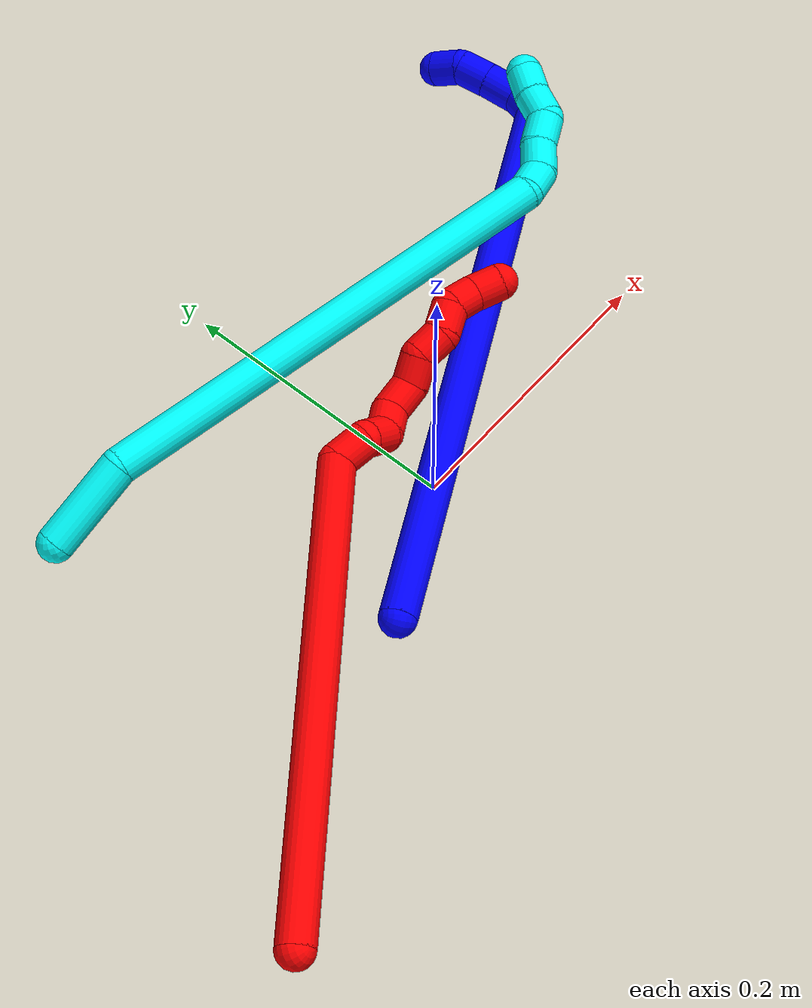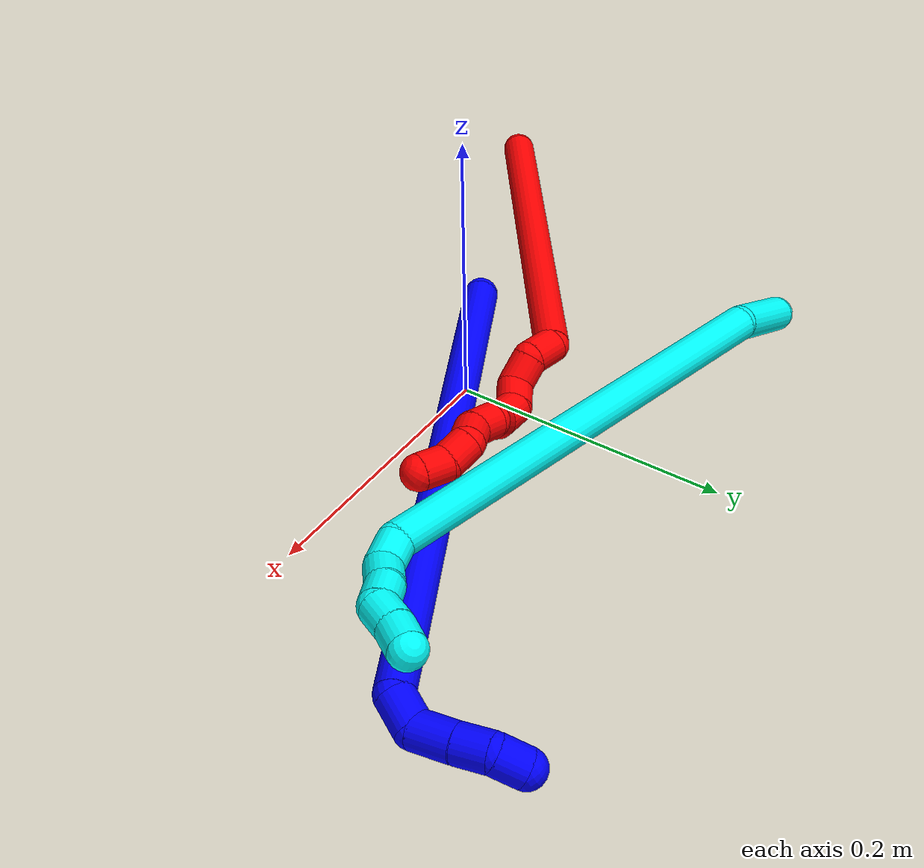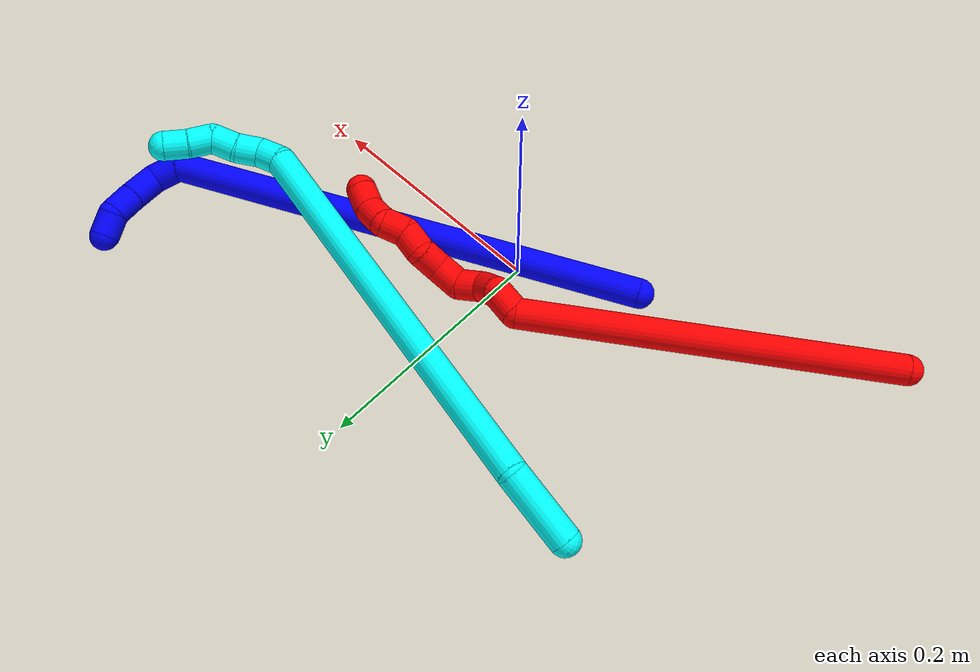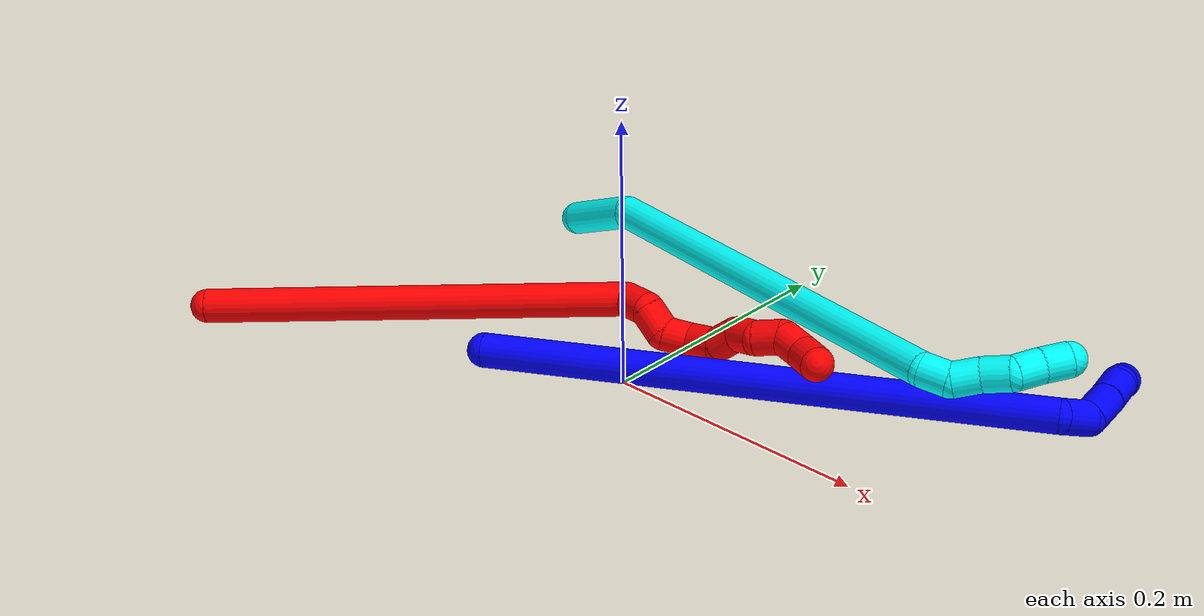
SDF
<sdf version="1.7">
 <world name="default">
  <plugin name="TubeGeneratorPlugin" filename="libtube_generator_plugin.so"/>
  <model name="photoneo_s_sensor">
   <static>1</static>
   <pose>0 0 2 1.57079 1.57079 3.14159</pose>
   <link name="link">
    <inertial><mass>0.1</mass></inertial>
    <sensor name="sensor" type="depth">
     <update_rate>30</update_rate>
     <camera>
      <horizontal_fov>1.22</horizontal_fov>
      <image><width>1920</width><height>1200</height><format>B8G8R8</format></image>
      <clip><near>0.1</near><far>4</far></clip>
      <depth_camera><output>points</output></depth_camera>
     </camera>
     <plugin name="camera_plugin" filename="libgazebo_ros_depth_camera.so">
      <baseline>0.2</baseline>
      <alwaysOn>1</alwaysOn>
      <updateRate>0.0</updateRate>
      <cameraName>camera_ir</cameraName>
      <imageTopicName>/camera/color/image_raw</imageTopicName>
      <cameraInfoTopicName>/camera/color/camera_info</cameraInfoTopicName>
      <depthImageTopicName>/camera/depth/image_raw</depthImageTopicName>
      <depthImageCameraInfoTopicName>/camera/depth/camera_info</depthImageCameraInfoTopicName>
      <pointCloudTopicName>/camera/depth/points</pointCloudTopicName>
      <frameName>fr_optical</frameName>
      <pointCloudCutoff>0.1</pointCloudCutoff>
      <pointCloudCutoffMax>2.0</pointCloudCutoffMax>
      <distortionK1>0</distortionK1>
      <distortionK2>0</distortionK2>
      <distortionK3>0</distortionK3>
      <distortionT1>0</distortionT1>
      <distortionT2>0</distortionT2>
      <CxPrime>0</CxPrime>
      <Cx>0</Cx>
      <Cy>0</Cy>
      <focalLength>0</focalLength>
      <hackBaseline>0</hackBaseline>
     </plugin>
    </sensor>
   </link>
  </model>
  <gravity>0 0 -9.8</gravity>
  <magnetic_field>6e-06 2.3e-05 -4.2e-05</magnetic_field>
  <atmosphere type="adiabatic"/>
  <physics name="default_physics" default="0" type="ode">
   <max_step_size>0.003</max_step_size>
   <real_time_factor>1</real_time_factor>
   <real_time_update_rate>1000</real_time_update_rate>
   <max_contacts>10000</max_contacts>
   <ode>
    <solver>
     <type>quick</type>
     <iters>100</iters>
     <sor>1.3</sor>
     <use_dynamic_moi_rescaling>0</use_dynamic_moi_rescaling>
    </solver>
    <constraints>
     <contact_max_correcting_vel>0</contact_max_correcting_vel>
     <contact_surface_layer>0.001</contact_surface_layer>
     <cfm>0</cfm>
     <erp>0.2</erp>
    </constraints>
   </ode>
  </physics>
  <scene><ambient>0.4 0.4 0.4 1</ambient><background>0.7 0.7 0.7 1</background><shadows>0</shadows></scene>
  <audio><device>default</device></audio>
  <spherical_coordinates>
   <surface_model>EARTH_WGS84</surface_model>
   <latitude_deg>0</latitude_deg>
   <longitude_deg>0</longitude_deg>
   <elevation>0</elevation>
   <heading_deg>0</heading_deg>
  </spherical_coordinates>
  <model name="bin">
   <static>1</static>
   <link name="bottom">
    <collision name="collision-bottom">
     <pose>0 0 -0.01 0 -0 0</pose>
     <geometry><box><size>0.8 0.6 0.02</size></box></geometry>
     <surface>
      <friction><ode><mu>100</mu><mu2>100</mu2></ode></friction>
      <contact><collide_bitmask>65535</collide_bitmask></contact>
     </surface>
    </collision>
   </link>
   <link name="west_wall">
    <collision name="collision-west_wall">
     <pose>-0.41 0 0.1 0 -0 0</pose>
     <geometry><box><size>0.02 0.6 0.2</size></box></geometry>
     <surface>
      <friction><ode><mu>100</mu><mu2>100</mu2></ode></friction>
      <contact><collide_bitmask>65535</collide_bitmask></contact>
     </surface>
    </collision>
   </link>
   <link name="east_wall">
    <collision name="collision-east_wall">
     <pose>0.41 0 0.1 0 -0 0</pose>
     <geometry><box><size>0.02 0.6 0.2</size></box></geometry>
     <surface>
      <friction><ode><mu>100</mu><mu2>100</mu2></ode></friction>
      <contact><collide_bitmask>65535</collide_bitmask></contact>
     </surface>
    </collision>
   </link>
   <link name="south_wall">
    <collision name="collision-south_wall">
     <pose>0 -0.31 0.1 0 -0 0</pose>
     <geometry><box><size>0.8 0.02 0.2</size></box></geometry>
     <surface>
      <friction><ode><mu>100</mu><mu2>100</mu2></ode></friction>
      <contact><collide_bitmask>65535</collide_bitmask></contact>
     </surface>
    </collision>
   </link>
   <link name="north_wall">
    <collision name="collision-north_wall">
     <pose>0 0.31 0.1 0 -0 0</pose>
     <geometry><box><size>0.8 0.02 0.2</size></box></geometry>
     <surface>
      <friction><ode><mu>100</mu><mu2>100</mu2></ode></friction>
      <contact><collide_bitmask>65535</collide_bitmask></contact>
     </surface>
    </collision>
   </link>
  </model>
  <model name="1">
   <static>0</static>
   <link name="1">
    <collision name="collision-cylinder-e_1_1_4">
     <pose>0.195479 0.028595 0.049634 -0.522681 1.28574 -0.395427</pose>
     <geometry><cylinder><radius>0.0125</radius><length>0.407397</length></cylinder></geometry>
     <surface>
      <friction><ode><mu>1.16</mu><mu2>1.16</mu2><slip1>0</slip1><slip2>0</slip2></ode></friction>
      <contact><ode><kp>1e+06</kp><kd>1</kd><max_vel>0</max_vel><min_depth>0.001</min_depth></ode></contact>
     </surface>
    </collision>
    <visual name="visual-cylinder-e_1_1_4">
     <pose>0.195479 0.028595 0.049634 -0.522681 1.28574 -0.395427</pose>
     <geometry><cylinder><radius>0.0125</radius><length>0.407397</length></cylinder></geometry>
     <material><ambient>0 0 1 1</ambient></material>
    </visual>
    <collision name="collision-cylinder-e_2_4_5">
     <pose>0.401388 0.052226 0.097257 1.9555 1.09639 1.47224</pose>
     <geometry><cylinder><radius>0.0125</radius><length>0.023449</length></cylinder></geometry>
     <surface>
      <friction><ode><mu>1.16</mu><mu2>1.16</mu2><slip1>0</slip1><slip2>0</slip2></ode></friction>
      <contact><ode><kp>1e+06</kp><kd>1</kd><max_vel>0</max_vel><min_depth>0.001</min_depth></ode></contact>
     </surface>
    </collision>
    <visual name="visual-cylinder-e_2_4_5">
     <pose>0.401388 0.052226 0.097257 1.9555 1.09639 1.47224</pose>
     <geometry><cylinder><radius>0.0125</radius><length>0.023449</length></cylinder></geometry>
     <material><ambient>0 0 1 1</ambient></material>
    </visual>
    <collision name="collision-cylinder-e_3_5_6">
     <pose>0.41977 0.043266 0.08521 2.76277 0.634597 2.08478</pose>
     <geometry><cylinder><radius>0.0125</radius><length>0.026829</length></cylinder></geometry>
     <surface>
      <friction><ode><mu>1.16</mu><mu2>1.16</mu2><slip1>0</slip1><slip2>0</slip2></ode></friction>
      <contact><ode><kp>1e+06</kp><kd>1</kd><max_vel>0</max_vel><min_depth>0.001</min_depth></ode></contact>
     </surface>
    </collision>
    <visual name="visual-cylinder-e_3_5_6">
     <pose>0.41977 0.043266 0.08521 2.76277 0.634597 2.08478</pose>
     <geometry><cylinder><radius>0.0125</radius><length>0.026829</length></cylinder></geometry>
     <material><ambient>0 0 1 1</ambient></material>
    </visual>
    <collision name="collision-cylinder-e_4_6_7">
     <pose>0.433691 0.035768 0.066513 2.7572 0.568518 1.96644</pose>
     <geometry><cylinder><radius>0.0125</radius><length>0.022171</length></cylinder></geometry>
     <surface>
      <friction><ode><mu>1.16</mu><mu2>1.16</mu2><slip1>0</slip1><slip2>0</slip2></ode></friction>
      <contact><ode><kp>1e+06</kp><kd>1</kd><max_vel>0</max_vel><min_depth>0.001</min_depth></ode></contact>
     </surface>
    </collision>
    <visual name="visual-cylinder-e_4_6_7">
     <pose>0.433691 0.035768 0.066513 2.7572 0.568518 1.96644</pose>
     <geometry><cylinder><radius>0.0125</radius><length>0.022171</length></cylinder></geometry>
     <material><ambient>0 0 1 1</ambient></material>
    </visual>
    <collision name="collision-cylinder-e_5_7_2">
     <pose>0.442916 0.024587 0.052197 2.2057 0.329091 0.634891</pose>
     <geometry><cylinder><radius>0.0125</radius><length>0.020153</length></cylinder></geometry>
     <surface>
      <friction><ode><mu>1.16</mu><mu2>1.16</mu2><slip1>0</slip1><slip2>0</slip2></ode></friction>
      <contact><ode><kp>1e+06</kp><kd>1</kd><max_vel>0</max_vel><min_depth>0.001</min_depth></ode></contact>
     </surface>
    </collision>
    <visual name="visual-cylinder-e_5_7_2">
     <pose>0.442916 0.024587 0.052197 2.2057 0.329091 0.634891</pose>
     <geometry><cylinder><radius>0.0125</radius><length>0.020153</length></cylinder></geometry>
     <material><ambient>0 0 1 1</ambient></material>
    </visual>
    <collision name="collision-sphere-2">
     <pose>0.446173 0.01691 0.046542 0 -0 0</pose>
     <geometry><sphere><radius>0.0125</radius></sphere></geometry>
     <surface>
      <friction><ode><mu>1.16</mu><mu2>1.16</mu2><slip1>0</slip1><slip2>0</slip2></ode></friction>
      <contact><ode><kp>1e+06</kp><kd>1</kd><max_vel>0</max_vel><min_depth>0.001</min_depth></ode></contact>
     </surface>
    </collision>
    <visual name="visual-sphere-2">
     <pose>0.446173 0.01691 0.046542 0 -0 0</pose>
     <geometry><sphere><radius>0.0125</radius></sphere></geometry>
     <material><ambient>0 0 1 1</ambient></material>
    </visual>
    <collision name="collision-sphere-7">
     <pose>0.43966 0.032265 0.057853 0 -0 0</pose>
     <geometry><sphere><radius>0.0125</radius></sphere></geometry>
     <surface>
      <friction><ode><mu>1.16</mu><mu2>1.16</mu2><slip1>0</slip1><slip2>0</slip2></ode></friction>
      <contact><ode><kp>1e+06</kp><kd>1</kd><max_vel>0</max_vel><min_depth>0.001</min_depth></ode></contact>
     </surface>
    </collision>
    <visual name="visual-sphere-7">
     <pose>0.43966 0.032265 0.057853 0 -0 0</pose>
     <geometry><sphere><radius>0.0125</radius></sphere></geometry>
     <material><ambient>0 0 1 1</ambient></material>
    </visual>
    <collision name="collision-sphere-6">
     <pose>0.427723 0.039271 0.075173 0 -0 0</pose>
     <geometry><sphere><radius>0.0125</radius></sphere></geometry>
     <surface>
      <friction><ode><mu>1.16</mu><mu2>1.16</mu2><slip1>0</slip1><slip2>0</slip2></ode></friction>
      <contact><ode><kp>1e+06</kp><kd>1</kd><max_vel>0</max_vel><min_depth>0.001</min_depth></ode></contact>
     </surface>
    </collision>
    <visual name="visual-sphere-6">
     <pose>0.427723 0.039271 0.075173 0 -0 0</pose>
     <geometry><sphere><radius>0.0125</radius></sphere></geometry>
     <material><ambient>0 0 1 1</ambient></material>
    </visual>
    <collision name="collision-sphere-5">
     <pose>0.411817 0.047262 0.095247 0 -0 0</pose>
     <geometry><sphere><radius>0.0125</radius></sphere></geometry>
     <surface>
      <friction><ode><mu>1.16</mu><mu2>1.16</mu2><slip1>0</slip1><slip2>0</slip2></ode></friction>
      <contact><ode><kp>1e+06</kp><kd>1</kd><max_vel>0</max_vel><min_depth>0.001</min_depth></ode></contact>
     </surface>
    </collision>
    <visual name="visual-sphere-5">
     <pose>0.411817 0.047262 0.095247 0 -0 0</pose>
     <geometry><sphere><radius>0.0125</radius></sphere></geometry>
     <material><ambient>0 0 1 1</ambient></material>
    </visual>
    <collision name="collision-sphere-1">
     <geometry><sphere><radius>0.0125</radius></sphere></geometry>
     <surface>
      <friction><ode><mu>1.16</mu><mu2>1.16</mu2><slip1>0</slip1><slip2>0</slip2></ode></friction>
      <contact><ode><kp>1e+06</kp><kd>1</kd><max_vel>0</max_vel><min_depth>0.001</min_depth></ode></contact>
     </surface>
    </collision>
    <visual name="visual-sphere-1">
     <geometry><sphere><radius>0.0125</radius></sphere></geometry>
     <material><ambient>0 0 1 1</ambient></material>
    </visual>
    <collision name="collision-sphere-4">
     <pose>0.390958 0.057191 0.099267 0 -0 0</pose>
     <geometry><sphere><radius>0.0125</radius></sphere></geometry>
     <surface>
      <friction><ode><mu>1.16</mu><mu2>1.16</mu2><slip1>0</slip1><slip2>0</slip2></ode></friction>
      <contact><ode><kp>1e+06</kp><kd>1</kd><max_vel>0</max_vel><min_depth>0.001</min_depth></ode></contact>
     </surface>
    </collision>
    <visual name="visual-sphere-4">
     <pose>0.390958 0.057191 0.099267 0 -0 0</pose>
     <geometry><sphere><radius>0.0125</radius></sphere></geometry>
     <material><ambient>0 0 1 1</ambient></material>
    </visual>
    <inertial>
     <pose>0.237707 0.030647 0.054628 0 -0 0</pose>
     <mass>0.5</mass>
     <inertia>
      <ixx>0.000894</ixx>
      <ixy>0</ixy>
      <ixz>0</ixz>
      <iyy>0.004959</iyy>
      <iyz>0</iyz>
      <izz>-0.006214</izz>
     </inertia>
    </inertial>
   </link>
   <pose>-0.091062 -0.047443 0.011525 2.04522 -0.013874 0.750331</pose>
  </model>
  <model name="2">
   <static>0</static>
   <link name="2">
    <collision name="collision-cylinder-e_1_1_4">
     <pose>0.140837 0.063815 0.017816 -1.29854 1.13107 -0.897903</pose>
     <geometry><cylinder><radius>0.0125</radius><length>0.311286</length></cylinder></geometry>
     <surface>
      <friction><ode><mu>1.16</mu><mu2>1.16</mu2><slip1>0</slip1><slip2>0</slip2></ode></friction>
      <contact><ode><kp>1e+06</kp><kd>1</kd><max_vel>0</max_vel><min_depth>0.001</min_depth></ode></contact>
     </surface>
    </collision>
    <visual name="visual-cylinder-e_1_1_4">
     <pose>0.140837 0.063815 0.017816 -1.29854 1.13107 -0.897903</pose>
     <geometry><cylinder><radius>0.0125</radius><length>0.311286</length></cylinder></geometry>
     <material><ambient>1 0 0 1</ambient></material>
    </visual>
    <collision name="collision-cylinder-e_2_4_5">
     <pose>0.290453 0.1264 0.043355 0.158006 0.843172 0.07098</pose>
     <geometry><cylinder><radius>0.0125</radius><length>0.023515</length></cylinder></geometry>
     <surface>
      <friction><ode><mu>1.16</mu><mu2>1.16</mu2><slip1>0</slip1><slip2>0</slip2></ode></friction>
      <contact><ode><kp>1e+06</kp><kd>1</kd><max_vel>0</max_vel><min_depth>0.001</min_depth></ode></contact>
     </surface>
    </collision>
    <visual name="visual-cylinder-e_2_4_5">
     <pose>0.290453 0.1264 0.043355 0.158006 0.843172 0.07098</pose>
     <geometry><cylinder><radius>0.0125</radius><length>0.023515</length></cylinder></geometry>
     <material><ambient>1 0 0 1</ambient></material>
    </visual>
    <collision name="collision-cylinder-e_3_5_6">
     <pose>0.308225 0.119461 0.052145 1.386 0.997353 0.849396</pose>
     <geometry><cylinder><radius>0.0125</radius><length>0.021408</length></cylinder></geometry>
     <surface>
      <friction><ode><mu>1.16</mu><mu2>1.16</mu2><slip1>0</slip1><slip2>0</slip2></ode></friction>
      <contact><ode><kp>1e+06</kp><kd>1</kd><max_vel>0</max_vel><min_depth>0.001</min_depth></ode></contact>
     </surface>
    </collision>
    <visual name="visual-cylinder-e_3_5_6">
     <pose>0.308225 0.119461 0.052145 1.386 0.997353 0.849396</pose>
     <geometry><cylinder><radius>0.0125</radius><length>0.021408</length></cylinder></geometry>
     <material><ambient>1 0 0 1</ambient></material>
    </visual>
    <collision name="collision-cylinder-e_4_6_7">
     <pose>0.327276 0.115465 0.053703 -1.29152 1.39554 -1.12699</pose>
     <geometry><cylinder><radius>0.0125</radius><length>0.020431</length></cylinder></geometry>
     <surface>
      <friction><ode><mu>1.16</mu><mu2>1.16</mu2><slip1>0</slip1><slip2>0</slip2></ode></friction>
      <contact><ode><kp>1e+06</kp><kd>1</kd><max_vel>0</max_vel><min_depth>0.001</min_depth></ode></contact>
     </surface>
    </collision>
    <visual name="visual-cylinder-e_4_6_7">
     <pose>0.327276 0.115465 0.053703 -1.29152 1.39554 -1.12699</pose>
     <geometry><cylinder><radius>0.0125</radius><length>0.020431</length></cylinder></geometry>
     <material><ambient>1 0 0 1</ambient></material>
    </visual>
    <collision name="collision-cylinder-e_5_7_8">
     <pose>0.34634 0.118332 0.060849 -0.171784 0.927278 -0.086049</pose>
     <geometry><cylinder><radius>0.0125</radius><length>0.022512</length></cylinder></geometry>
     <surface>
      <friction><ode><mu>1.16</mu><mu2>1.16</mu2><slip1>0</slip1><slip2>0</slip2></ode></friction>
      <contact><ode><kp>1e+06</kp><kd>1</kd><max_vel>0</max_vel><min_depth>0.001</min_depth></ode></contact>
     </surface>
    </collision>
    <visual name="visual-cylinder-e_5_7_8">
     <pose>0.34634 0.118332 0.060849 -0.171784 0.927278 -0.086049</pose>
     <geometry><cylinder><radius>0.0125</radius><length>0.022512</length></cylinder></geometry>
     <material><ambient>1 0 0 1</ambient></material>
    </visual>
    <collision name="collision-cylinder-e_6_8_9">
     <pose>0.360578 0.125389 0.073892 -0.745855 0.541642 -0.216398</pose>
     <geometry><cylinder><radius>0.0125</radius><length>0.020302</length></cylinder></geometry>
     <surface>
      <friction><ode><mu>1.16</mu><mu2>1.16</mu2><slip1>0</slip1><slip2>0</slip2></ode></friction>
      <contact><ode><kp>1e+06</kp><kd>1</kd><max_vel>0</max_vel><min_depth>0.001</min_depth></ode></contact>
     </surface>
    </collision>
    <visual name="visual-cylinder-e_6_8_9">
     <pose>0.360578 0.125389 0.073892 -0.745855 0.541642 -0.216398</pose>
     <geometry><cylinder><radius>0.0125</radius><length>0.020302</length></cylinder></geometry>
     <material><ambient>1 0 0 1</ambient></material>
    </visual>
    <collision name="collision-cylinder-e_7_9_10">
     <pose>0.372548 0.131596 0.08769 -0.041081 0.737539 -0.015878</pose>
     <geometry><cylinder><radius>0.0125</radius><length>0.020039</length></cylinder></geometry>
     <surface>
      <friction><ode><mu>1.16</mu><mu2>1.16</mu2><slip1>0</slip1><slip2>0</slip2></ode></friction>
      <contact><ode><kp>1e+06</kp><kd>1</kd><max_vel>0</max_vel><min_depth>0.001</min_depth></ode></contact>
     </surface>
    </collision>
    <visual name="visual-cylinder-e_7_9_10">
     <pose>0.372548 0.131596 0.08769 -0.041081 0.737539 -0.015878</pose>
     <geometry><cylinder><radius>0.0125</radius><length>0.020039</length></cylinder></geometry>
     <material><ambient>1 0 0 1</ambient></material>
    </visual>
    <collision name="collision-cylinder-e_8_10_11">
     <pose>0.387862 0.135697 0.098888 -0.786523 1.01184 -0.451841</pose>
     <geometry><cylinder><radius>0.0125</radius><length>0.02023</length></cylinder></geometry>
     <surface>
      <friction><ode><mu>1.16</mu><mu2>1.16</mu2><slip1>0</slip1><slip2>0</slip2></ode></friction>
      <contact><ode><kp>1e+06</kp><kd>1</kd><max_vel>0</max_vel><min_depth>0.001</min_depth></ode></contact>
     </surface>
    </collision>
    <visual name="visual-cylinder-e_8_10_11">
     <pose>0.387862 0.135697 0.098888 -0.786523 1.01184 -0.451841</pose>
     <geometry><cylinder><radius>0.0125</radius><length>0.02023</length></cylinder></geometry>
     <material><ambient>1 0 0 1</ambient></material>
    </visual>
    <collision name="collision-cylinder-e_9_11_12">
     <pose>0.404645 0.136643 0.107661 0.519537 0.960295 0.275082</pose>
     <geometry><cylinder><radius>0.0125</radius><length>0.020034</length></cylinder></geometry>
     <surface>
      <friction><ode><mu>1.16</mu><mu2>1.16</mu2><slip1>0</slip1><slip2>0</slip2></ode></friction>
      <contact><ode><kp>1e+06</kp><kd>1</kd><max_vel>0</max_vel><min_depth>0.001</min_depth></ode></contact>
     </surface>
    </collision>
    <visual name="visual-cylinder-e_9_11_12">
     <pose>0.404645 0.136643 0.107661 0.519537 0.960295 0.275082</pose>
     <geometry><cylinder><radius>0.0125</radius><length>0.020034</length></cylinder></geometry>
     <material><ambient>1 0 0 1</ambient></material>
    </visual>
    <collision name="collision-cylinder-e_10_12_2">
     <pose>0.418655 0.130969 0.120444 0.347413 0.61051 0.110473</pose>
     <geometry><cylinder><radius>0.0125</radius><length>0.020243</length></cylinder></geometry>
     <surface>
      <friction><ode><mu>1.16</mu><mu2>1.16</mu2><slip1>0</slip1><slip2>0</slip2></ode></friction>
      <contact><ode><kp>1e+06</kp><kd>1</kd><max_vel>0</max_vel><min_depth>0.001</min_depth></ode></contact>
     </surface>
    </collision>
    <visual name="visual-cylinder-e_10_12_2">
     <pose>0.418655 0.130969 0.120444 0.347413 0.61051 0.110473</pose>
     <geometry><cylinder><radius>0.0125</radius><length>0.020243</length></cylinder></geometry>
     <material><ambient>1 0 0 1</ambient></material>
    </visual>
    <collision name="collision-sphere-2">
     <pose>0.424457 0.128145 0.128241 0 -0 0</pose>
     <geometry><sphere><radius>0.0125</radius></sphere></geometry>
     <surface>
      <friction><ode><mu>1.16</mu><mu2>1.16</mu2><slip1>0</slip1><slip2>0</slip2></ode></friction>
      <contact><ode><kp>1e+06</kp><kd>1</kd><max_vel>0</max_vel><min_depth>0.001</min_depth></ode></contact>
     </surface>
    </collision>
    <visual name="visual-sphere-2">
     <pose>0.424457 0.128145 0.128241 0 -0 0</pose>
     <geometry><sphere><radius>0.0125</radius></sphere></geometry>
     <material><ambient>1 0 0 1</ambient></material>
    </visual>
    <collision name="collision-sphere-12">
     <pose>0.412852 0.133792 0.112646 0 -0 0</pose>
     <geometry><sphere><radius>0.0125</radius></sphere></geometry>
     <surface>
      <friction><ode><mu>1.16</mu><mu2>1.16</mu2><slip1>0</slip1><slip2>0</slip2></ode></friction>
      <contact><ode><kp>1e+06</kp><kd>1</kd><max_vel>0</max_vel><min_depth>0.001</min_depth></ode></contact>
     </surface>
    </collision>
    <visual name="visual-sphere-12">
     <pose>0.412852 0.133792 0.112646 0 -0 0</pose>
     <geometry><sphere><radius>0.0125</radius></sphere></geometry>
     <material><ambient>1 0 0 1</ambient></material>
    </visual>
    <collision name="collision-sphere-11">
     <pose>0.396437 0.139495 0.102676 0 -0 0</pose>
     <geometry><sphere><radius>0.0125</radius></sphere></geometry>
     <surface>
      <friction><ode><mu>1.16</mu><mu2>1.16</mu2><slip1>0</slip1><slip2>0</slip2></ode></friction>
      <contact><ode><kp>1e+06</kp><kd>1</kd><max_vel>0</max_vel><min_depth>0.001</min_depth></ode></contact>
     </surface>
    </collision>
    <visual name="visual-sphere-11">
     <pose>0.396437 0.139495 0.102676 0 -0 0</pose>
     <geometry><sphere><radius>0.0125</radius></sphere></geometry>
     <material><ambient>1 0 0 1</ambient></material>
    </visual>
    <collision name="collision-sphere-10">
     <pose>0.379286 0.1319 0.095099 0 -0 0</pose>
     <geometry><sphere><radius>0.0125</radius></sphere></geometry>
     <surface>
      <friction><ode><mu>1.16</mu><mu2>1.16</mu2><slip1>0</slip1><slip2>0</slip2></ode></friction>
      <contact><ode><kp>1e+06</kp><kd>1</kd><max_vel>0</max_vel><min_depth>0.001</min_depth></ode></contact>
     </surface>
    </collision>
    <visual name="visual-sphere-10">
     <pose>0.379286 0.1319 0.095099 0 -0 0</pose>
     <geometry><sphere><radius>0.0125</radius></sphere></geometry>
     <material><ambient>1 0 0 1</ambient></material>
    </visual>
    <collision name="collision-sphere-9">
     <pose>0.365811 0.131291 0.08028 0 -0 0</pose>
     <geometry><sphere><radius>0.0125</radius></sphere></geometry>
     <surface>
      <friction><ode><mu>1.16</mu><mu2>1.16</mu2><slip1>0</slip1><slip2>0</slip2></ode></friction>
      <contact><ode><kp>1e+06</kp><kd>1</kd><max_vel>0</max_vel><min_depth>0.001</min_depth></ode></contact>
     </surface>
    </collision>
    <visual name="visual-sphere-9">
     <pose>0.365811 0.131291 0.08028 0 -0 0</pose>
     <geometry><sphere><radius>0.0125</radius></sphere></geometry>
     <material><ambient>1 0 0 1</ambient></material>
    </visual>
    <collision name="collision-sphere-4">
     <pose>0.281673 0.127631 0.035633 0 -0 0</pose>
     <geometry><sphere><radius>0.0125</radius></sphere></geometry>
     <surface>
      <friction><ode><mu>1.16</mu><mu2>1.16</mu2><slip1>0</slip1><slip2>0</slip2></ode></friction>
      <contact><ode><kp>1e+06</kp><kd>1</kd><max_vel>0</max_vel><min_depth>0.001</min_depth></ode></contact>
     </surface>
    </collision>
    <visual name="visual-sphere-4">
     <pose>0.281673 0.127631 0.035633 0 -0 0</pose>
     <geometry><sphere><radius>0.0125</radius></sphere></geometry>
     <material><ambient>1 0 0 1</ambient></material>
    </visual>
    <collision name="collision-sphere-1">
     <geometry><sphere><radius>0.0125</radius></sphere></geometry>
     <surface>
      <friction><ode><mu>1.16</mu><mu2>1.16</mu2><slip1>0</slip1><slip2>0</slip2></ode></friction>
      <contact><ode><kp>1e+06</kp><kd>1</kd><max_vel>0</max_vel><min_depth>0.001</min_depth></ode></contact>
     </surface>
    </collision>
    <visual name="visual-sphere-1">
     <geometry><sphere><radius>0.0125</radius></sphere></geometry>
     <material><ambient>1 0 0 1</ambient></material>
    </visual>
    <collision name="collision-sphere-8">
     <pose>0.355344 0.119486 0.067503 0 -0 0</pose>
     <geometry><sphere><radius>0.0125</radius></sphere></geometry>
     <surface>
      <friction><ode><mu>1.16</mu><mu2>1.16</mu2><slip1>0</slip1><slip2>0</slip2></ode></friction>
      <contact><ode><kp>1e+06</kp><kd>1</kd><max_vel>0</max_vel><min_depth>0.001</min_depth></ode></contact>
     </surface>
    </collision>
    <visual name="visual-sphere-8">
     <pose>0.355344 0.119486 0.067503 0 -0 0</pose>
     <geometry><sphere><radius>0.0125</radius></sphere></geometry>
     <material><ambient>1 0 0 1</ambient></material>
    </visual>
    <collision name="collision-sphere-5">
     <pose>0.299233 0.12517 0.051078 0 -0 0</pose>
     <geometry><sphere><radius>0.0125</radius></sphere></geometry>
     <surface>
      <friction><ode><mu>1.16</mu><mu2>1.16</mu2><slip1>0</slip1><slip2>0</slip2></ode></friction>
      <contact><ode><kp>1e+06</kp><kd>1</kd><max_vel>0</max_vel><min_depth>0.001</min_depth></ode></contact>
     </surface>
    </collision>
    <visual name="visual-sphere-5">
     <pose>0.299233 0.12517 0.051078 0 -0 0</pose>
     <geometry><sphere><radius>0.0125</radius></sphere></geometry>
     <material><ambient>1 0 0 1</ambient></material>
    </visual>
    <collision name="collision-sphere-6">
     <pose>0.317217 0.113753 0.053212 0 -0 0</pose>
     <geometry><sphere><radius>0.0125</radius></sphere></geometry>
     <surface>
      <friction><ode><mu>1.16</mu><mu2>1.16</mu2><slip1>0</slip1><slip2>0</slip2></ode></friction>
      <contact><ode><kp>1e+06</kp><kd>1</kd><max_vel>0</max_vel><min_depth>0.001</min_depth></ode></contact>
     </surface>
    </collision>
    <visual name="visual-sphere-6">
     <pose>0.317217 0.113753 0.053212 0 -0 0</pose>
     <geometry><sphere><radius>0.0125</radius></sphere></geometry>
     <material><ambient>1 0 0 1</ambient></material>
    </visual>
    <collision name="collision-sphere-7">
     <pose>0.337335 0.117177 0.054194 0 -0 0</pose>
     <geometry><sphere><radius>0.0125</radius></sphere></geometry>
     <surface>
      <friction><ode><mu>1.16</mu><mu2>1.16</mu2><slip1>0</slip1><slip2>0</slip2></ode></friction>
      <contact><ode><kp>1e+06</kp><kd>1</kd><max_vel>0</max_vel><min_depth>0.001</min_depth></ode></contact>
     </surface>
    </collision>
    <visual name="visual-sphere-7">
     <pose>0.337335 0.117177 0.054194 0 -0 0</pose>
     <geometry><sphere><radius>0.0125</radius></sphere></geometry>
     <material><ambient>1 0 0 1</ambient></material>
    </visual>
    <inertial>
     <pose>0.221932 0.087468 0.040003 0 -0 0</pose>
     <mass>0.5</mass>
     <inertia>
      <ixx>-0.000129</ixx>
      <ixy>0</ixy>
      <ixz>0</ixz>
      <iyy>0.001327</iyy>
      <iyz>0</iyz>
      <izz>-0.003322</izz>
     </inertia>
    </inertial>
   </link>
   <pose>-0.2888 -0.139511 0.012458 0.884448 0.335821 0.468432</pose>
  </model>
  <model name="3">
   <static>0</static>
   <link name="3">
    <collision name="collision-cylinder-e_1_1_4">
     <pose>0.026777 -0.009584 0.013026 0.634346 1.02748 0.366304</pose>
     <geometry><cylinder><radius>0.0125</radius><length>0.062563</length></cylinder></geometry>
     <surface>
      <friction><ode><mu>1.16</mu><mu2>1.16</mu2><slip1>0</slip1><slip2>0</slip2></ode></friction>
      <contact><ode><kp>1e+06</kp><kd>1</kd><max_vel>0</max_vel><min_depth>0.001</min_depth></ode></contact>
     </surface>
    </collision>
    <visual name="visual-cylinder-e_1_1_4">
     <pose>0.026777 -0.009584 0.013026 0.634346 1.02748 0.366304</pose>
     <geometry><cylinder><radius>0.0125</radius><length>0.062563</length></cylinder></geometry>
     <material><ambient>0.003922 1 0.996078 1</ambient></material>
    </visual>
    <collision name="collision-cylinder-e_2_4_5">
     <pose>0.215022 -0.060819 0.033693 1.38934 1.31431 1.14271</pose>
     <geometry><cylinder><radius>0.0125</radius><length>0.333857</length></cylinder></geometry>
     <surface>
      <friction><ode><mu>1.16</mu><mu2>1.16</mu2><slip1>0</slip1><slip2>0</slip2></ode></friction>
      <contact><ode><kp>1e+06</kp><kd>1</kd><max_vel>0</max_vel><min_depth>0.001</min_depth></ode></contact>
     </surface>
    </collision>
    <visual name="visual-cylinder-e_2_4_5">
     <pose>0.215022 -0.060819 0.033693 1.38934 1.31431 1.14271</pose>
     <geometry><cylinder><radius>0.0125</radius><length>0.333857</length></cylinder></geometry>
     <material><ambient>0.003922 1 0.996078 1</ambient></material>
    </visual>
    <collision name="collision-cylinder-e_3_5_6">
     <pose>0.386704 -0.100371 0.042639 -1.01499 1.33337 -0.824915</pose>
     <geometry><cylinder><radius>0.0125</radius><length>0.021017</length></cylinder></geometry>
     <surface>
      <friction><ode><mu>1.16</mu><mu2>1.16</mu2><slip1>0</slip1><slip2>0</slip2></ode></friction>
      <contact><ode><kp>1e+06</kp><kd>1</kd><max_vel>0</max_vel><min_depth>0.001</min_depth></ode></contact>
     </surface>
    </collision>
    <visual name="visual-cylinder-e_3_5_6">
     <pose>0.386704 -0.100371 0.042639 -1.01499 1.33337 -0.824915</pose>
     <geometry><cylinder><radius>0.0125</radius><length>0.021017</length></cylinder></geometry>
     <material><ambient>0.003922 1 0.996078 1</ambient></material>
    </visual>
    <collision name="collision-cylinder-e_4_6_7">
     <pose>0.404272 -0.094306 0.050007 -0.579027 0.792886 -0.248111</pose>
     <geometry><cylinder><radius>0.0125</radius><length>0.020647</length></cylinder></geometry>
     <surface>
      <friction><ode><mu>1.16</mu><mu2>1.16</mu2><slip1>0</slip1><slip2>0</slip2></ode></friction>
      <contact><ode><kp>1e+06</kp><kd>1</kd><max_vel>0</max_vel><min_depth>0.001</min_depth></ode></contact>
     </surface>
    </collision>
    <visual name="visual-cylinder-e_4_6_7">
     <pose>0.404272 -0.094306 0.050007 -0.579027 0.792886 -0.248111</pose>
     <geometry><cylinder><radius>0.0125</radius><length>0.020647</length></cylinder></geometry>
     <material><ambient>0.003922 1 0.996078 1</ambient></material>
    </visual>
    <collision name="collision-cylinder-e_5_7_8">
     <pose>0.420616 -0.08821 0.061255 -0.390151 1.0133 -0.218438</pose>
     <geometry><cylinder><radius>0.0125</radius><length>0.021188</length></cylinder></geometry>
     <surface>
      <friction><ode><mu>1.16</mu><mu2>1.16</mu2><slip1>0</slip1><slip2>0</slip2></ode></friction>
      <contact><ode><kp>1e+06</kp><kd>1</kd><max_vel>0</max_vel><min_depth>0.001</min_depth></ode></contact>
     </surface>
    </collision>
    <visual name="visual-cylinder-e_5_7_8">
     <pose>0.420616 -0.08821 0.061255 -0.390151 1.0133 -0.218438</pose>
     <geometry><cylinder><radius>0.0125</radius><length>0.021188</length></cylinder></geometry>
     <material><ambient>0.003922 1 0.996078 1</ambient></material>
    </visual>
    <collision name="collision-cylinder-e_6_8_9">
     <pose>0.433963 -0.078753 0.072284 -0.897243 0.435178 -0.212047</pose>
     <geometry><cylinder><radius>0.0125</radius><length>0.02067</length></cylinder></geometry>
     <surface>
      <friction><ode><mu>1.16</mu><mu2>1.16</mu2><slip1>0</slip1><slip2>0</slip2></ode></friction>
      <contact><ode><kp>1e+06</kp><kd>1</kd><max_vel>0</max_vel><min_depth>0.001</min_depth></ode></contact>
     </surface>
    </collision>
    <visual name="visual-cylinder-e_6_8_9">
     <pose>0.433963 -0.078753 0.072284 -0.897243 0.435178 -0.212047</pose>
     <geometry><cylinder><radius>0.0125</radius><length>0.02067</length></cylinder></geometry>
     <material><ambient>0.003922 1 0.996078 1</ambient></material>
    </visual>
    <collision name="collision-cylinder-e_7_9_2">
     <pose>0.443804 -0.065227 0.083791 -0.831021 0.578578 -0.261141</pose>
     <geometry><cylinder><radius>0.0125</radius><length>0.020058</length></cylinder></geometry>
     <surface>
      <friction><ode><mu>1.16</mu><mu2>1.16</mu2><slip1>0</slip1><slip2>0</slip2></ode></friction>
      <contact><ode><kp>1e+06</kp><kd>1</kd><max_vel>0</max_vel><min_depth>0.001</min_depth></ode></contact>
     </surface>
    </collision>
    <visual name="visual-cylinder-e_7_9_2">
     <pose>0.443804 -0.065227 0.083791 -0.831021 0.578578 -0.261141</pose>
     <geometry><cylinder><radius>0.0125</radius><length>0.020058</length></cylinder></geometry>
     <material><ambient>0.003922 1 0.996078 1</ambient></material>
    </visual>
    <collision name="collision-sphere-2">
     <pose>0.449288 -0.059025 0.089451 0 -0 0</pose>
     <geometry><sphere><radius>0.0125</radius></sphere></geometry>
     <surface>
      <friction><ode><mu>1.16</mu><mu2>1.16</mu2><slip1>0</slip1><slip2>0</slip2></ode></friction>
      <contact><ode><kp>1e+06</kp><kd>1</kd><max_vel>0</max_vel><min_depth>0.001</min_depth></ode></contact>
     </surface>
    </collision>
    <visual name="visual-sphere-2">
     <pose>0.449288 -0.059025 0.089451 0 -0 0</pose>
     <geometry><sphere><radius>0.0125</radius></sphere></geometry>
     <material><ambient>0.003922 1 0.996078 1</ambient></material>
    </visual>
    <collision name="collision-sphere-9">
     <pose>0.43832 -0.071428 0.07813 0 -0 0</pose>
     <geometry><sphere><radius>0.0125</radius></sphere></geometry>
     <surface>
      <friction><ode><mu>1.16</mu><mu2>1.16</mu2><slip1>0</slip1><slip2>0</slip2></ode></friction>
      <contact><ode><kp>1e+06</kp><kd>1</kd><max_vel>0</max_vel><min_depth>0.001</min_depth></ode></contact>
     </surface>
    </collision>
    <visual name="visual-sphere-9">
     <pose>0.43832 -0.071428 0.07813 0 -0 0</pose>
     <geometry><sphere><radius>0.0125</radius></sphere></geometry>
     <material><ambient>0.003922 1 0.996078 1</ambient></material>
    </visual>
    <collision name="collision-sphere-4">
     <pose>0.053554 -0.019168 0.026051 0 -0 0</pose>
     <geometry><sphere><radius>0.0125</radius></sphere></geometry>
     <surface>
      <friction><ode><mu>1.16</mu><mu2>1.16</mu2><slip1>0</slip1><slip2>0</slip2></ode></friction>
      <contact><ode><kp>1e+06</kp><kd>1</kd><max_vel>0</max_vel><min_depth>0.001</min_depth></ode></contact>
     </surface>
    </collision>
    <visual name="visual-sphere-4">
     <pose>0.053554 -0.019168 0.026051 0 -0 0</pose>
     <geometry><sphere><radius>0.0125</radius></sphere></geometry>
     <material><ambient>0.003922 1 0.996078 1</ambient></material>
    </visual>
    <collision name="collision-sphere-1">
     <geometry><sphere><radius>0.0125</radius></sphere></geometry>
     <surface>
      <friction><ode><mu>1.16</mu><mu2>1.16</mu2><slip1>0</slip1><slip2>0</slip2></ode></friction>
      <contact><ode><kp>1e+06</kp><kd>1</kd><max_vel>0</max_vel><min_depth>0.001</min_depth></ode></contact>
     </surface>
    </collision>
    <visual name="visual-sphere-1">
     <geometry><sphere><radius>0.0125</radius></sphere></geometry>
     <material><ambient>0.003922 1 0.996078 1</ambient></material>
    </visual>
    <collision name="collision-sphere-8">
     <pose>0.429606 -0.086079 0.066439 0 -0 0</pose>
     <geometry><sphere><radius>0.0125</radius></sphere></geometry>
     <surface>
      <friction><ode><mu>1.16</mu><mu2>1.16</mu2><slip1>0</slip1><slip2>0</slip2></ode></friction>
      <contact><ode><kp>1e+06</kp><kd>1</kd><max_vel>0</max_vel><min_depth>0.001</min_depth></ode></contact>
     </surface>
    </collision>
    <visual name="visual-sphere-8">
     <pose>0.429606 -0.086079 0.066439 0 -0 0</pose>
     <geometry><sphere><radius>0.0125</radius></sphere></geometry>
     <material><ambient>0.003922 1 0.996078 1</ambient></material>
    </visual>
    <collision name="collision-sphere-5">
     <pose>0.37649 -0.10247 0.041335 0 -0 0</pose>
     <geometry><sphere><radius>0.0125</radius></sphere></geometry>
     <surface>
      <friction><ode><mu>1.16</mu><mu2>1.16</mu2><slip1>0</slip1><slip2>0</slip2></ode></friction>
      <contact><ode><kp>1e+06</kp><kd>1</kd><max_vel>0</max_vel><min_depth>0.001</min_depth></ode></contact>
     </surface>
    </collision>
    <visual name="visual-sphere-5">
     <pose>0.37649 -0.10247 0.041335 0 -0 0</pose>
     <geometry><sphere><radius>0.0125</radius></sphere></geometry>
     <material><ambient>0.003922 1 0.996078 1</ambient></material>
    </visual>
    <collision name="collision-sphere-6">
     <pose>0.396917 -0.098271 0.043943 0 -0 0</pose>
     <geometry><sphere><radius>0.0125</radius></sphere></geometry>
     <surface>
      <friction><ode><mu>1.16</mu><mu2>1.16</mu2><slip1>0</slip1><slip2>0</slip2></ode></friction>
      <contact><ode><kp>1e+06</kp><kd>1</kd><max_vel>0</max_vel><min_depth>0.001</min_depth></ode></contact>
     </surface>
    </collision>
    <visual name="visual-sphere-6">
     <pose>0.396917 -0.098271 0.043943 0 -0 0</pose>
     <geometry><sphere><radius>0.0125</radius></sphere></geometry>
     <material><ambient>0.003922 1 0.996078 1</ambient></material>
    </visual>
    <collision name="collision-sphere-7">
     <pose>0.411626 -0.090342 0.056071 0 -0 0</pose>
     <geometry><sphere><radius>0.0125</radius></sphere></geometry>
     <surface>
      <friction><ode><mu>1.16</mu><mu2>1.16</mu2><slip1>0</slip1><slip2>0</slip2></ode></friction>
      <contact><ode><kp>1e+06</kp><kd>1</kd><max_vel>0</max_vel><min_depth>0.001</min_depth></ode></contact>
     </surface>
    </collision>
    <visual name="visual-sphere-7">
     <pose>0.411626 -0.090342 0.056071 0 -0 0</pose>
     <geometry><sphere><radius>0.0125</radius></sphere></geometry>
     <material><ambient>0.003922 1 0.996078 1</ambient></material>
    </visual>
    <inertial>
     <pose>0.23344 -0.059533 0.03693 0 -0 0</pose>
     <mass>0.5</mass>
     <inertia>
      <ixx>0.0011</ixx>
      <ixy>0</ixy>
      <ixz>0</ixz>
      <iyy>0.003674</iyy>
      <iyz>0</iyz>
      <izz>-0.002249</izz>
     </inertia>
    </inertial>
   </link>
   <pose>-0.189201 0.150497 0.012185 -0.528108 0.127045 -0.001387</pose>
  </model>
 </world>
</sdf>
